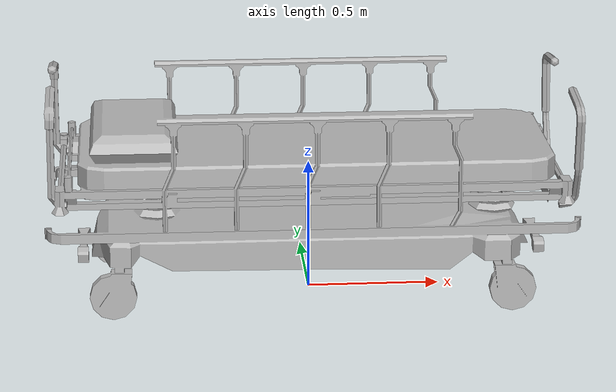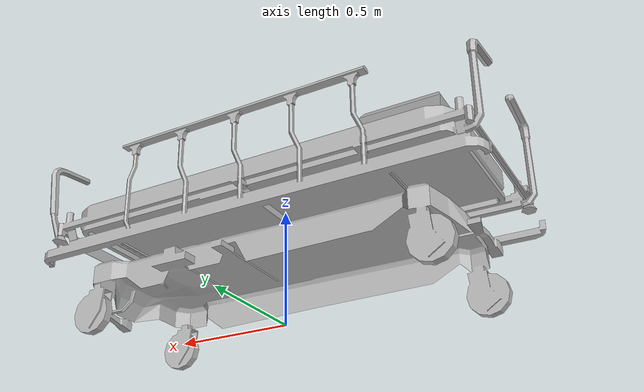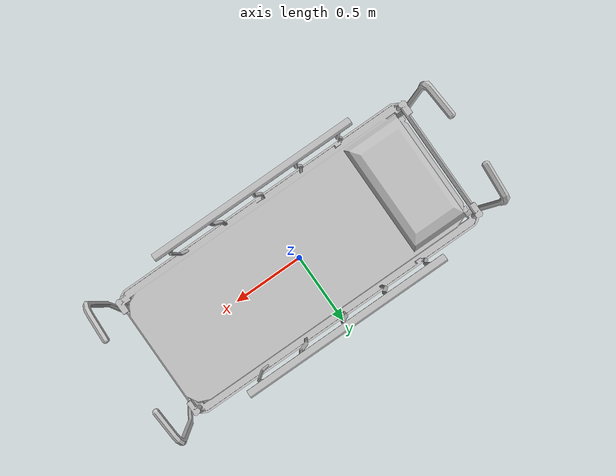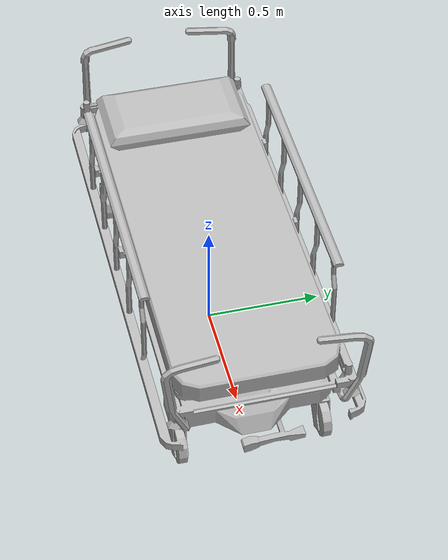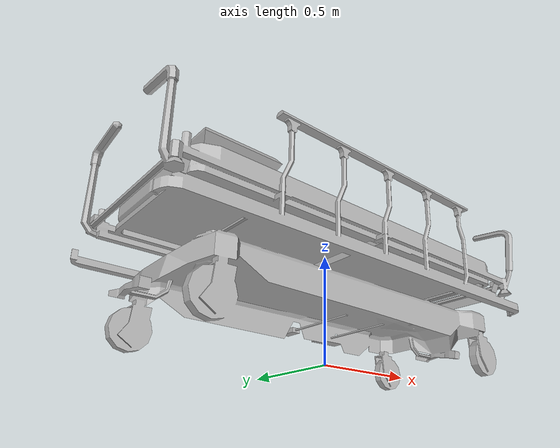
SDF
<?xml version="1.0" ?>
<sdf version="1.5">
  <model name="TrolleyBed">
    <link name="link">
      <pose>0 0 0 0 0 0</pose>

        <visual name="visual">
          <geometry>
            <mesh><uri>model://TrolleyBed/meshes/TrolleyBed.obj</uri></mesh>
          </geometry>
        </visual>

        <collision name="collision">
          <geometry>
            <mesh><uri>model://TrolleyBed/meshes/TrolleyBed.obj</uri></mesh>
          </geometry>
        </collision>

    </link>
  </model>
</sdf>
